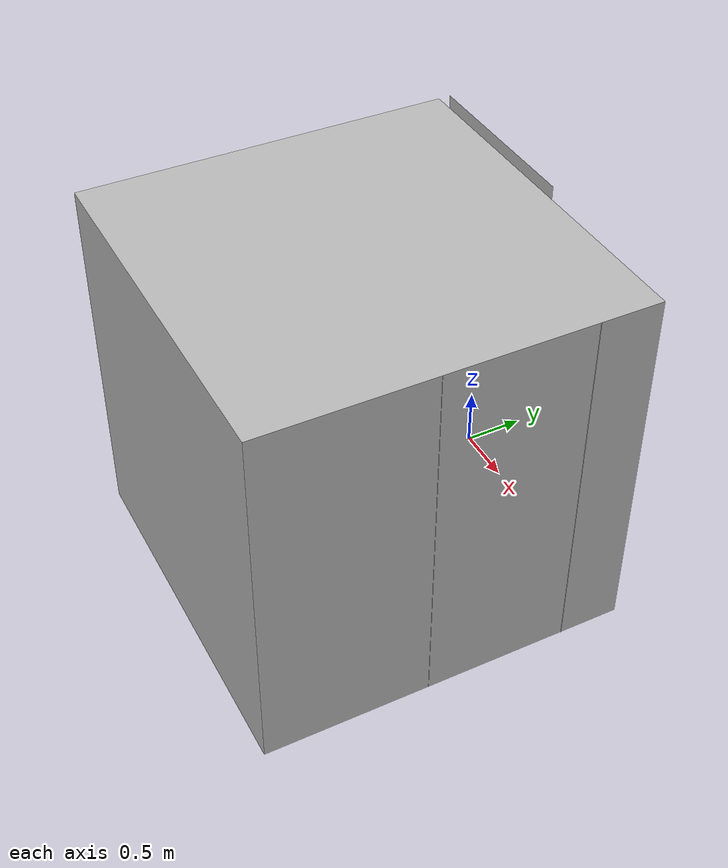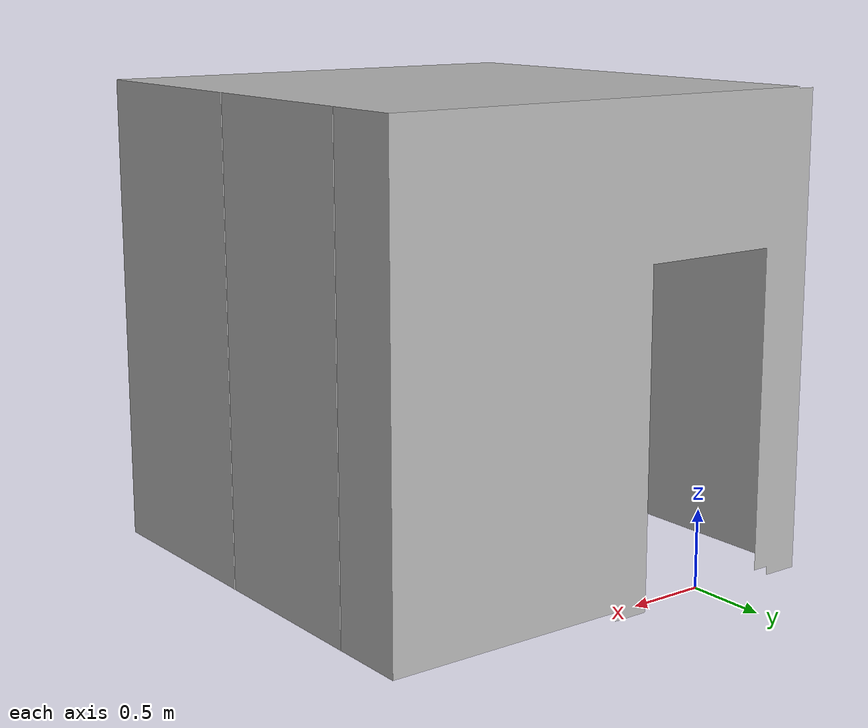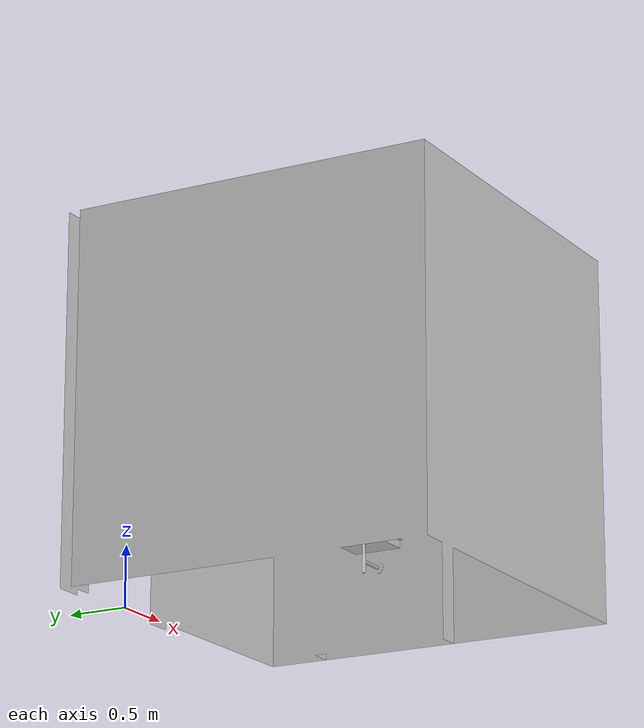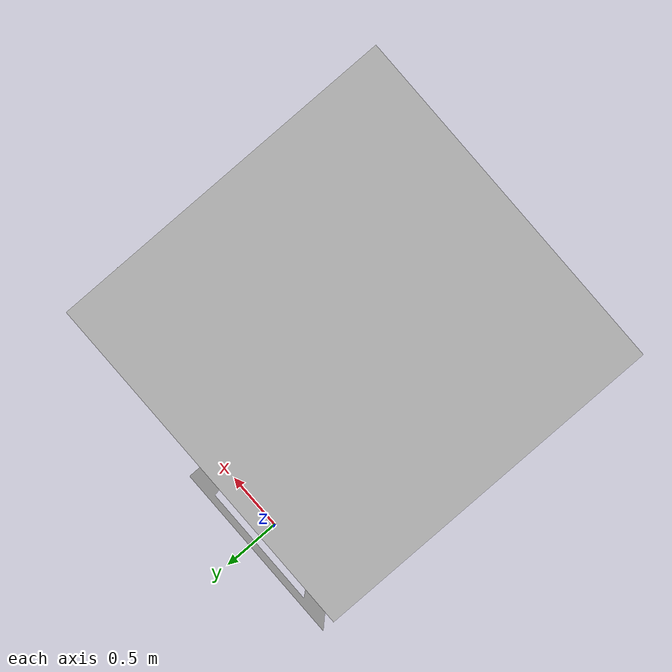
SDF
<?xml version="1.0" ?>
<sdf version="1.5">
  <model name="bathroom">
    <static>true</static>
    <link name="link">
      <collision name="collision">
        <geometry>
          <mesh>
            <uri>model://bathroom/meshes/bathroom.obj</uri>
            <scale>0.01 0.01 0.01</scale>
          </mesh>
        </geometry>
      </collision>
      <visual name="visual">
        <geometry>
          <mesh>
            <uri>model://bathroom/meshes/bathroom.obj</uri>
            <scale>0.01 0.01 0.01</scale>
          </mesh>
        </geometry>
      </visual>
    </link>
  </model>
</sdf>
